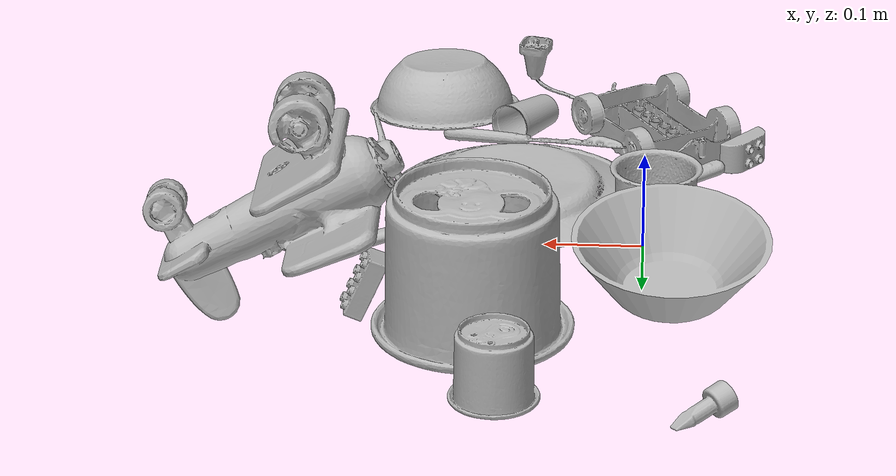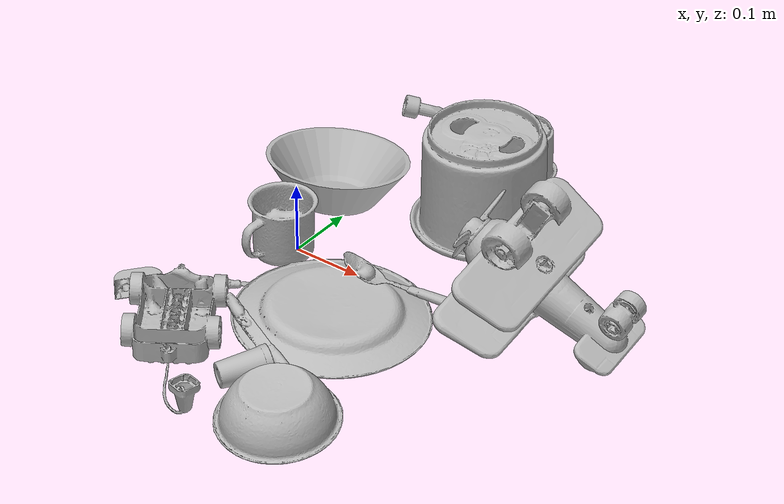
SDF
<sdf version="1.4">
  <world name="default">
    <light name="light1" type="point">
      <pose>0 0 1 0 0 0</pose>
      <diffuse>3 3 3 1</diffuse>
      <specular>3 3 3 1</specular>
    </light>
    <light name="light2" type="point">
      <pose>0 0.5 2 0 0 0</pose>
      <diffuse>1 1 1 1</diffuse>
      <specular>1 1 1 1</specular>
    </light>
    <light name="light3" type="point">
      <pose>0 0.5 2 0 0 0</pose>
      <diffuse>3 3 3 1</diffuse>
      <specular>3 3 3 1</specular>
    </light>
    <scene>
      <ambient>0.7 0.7 0.7</ambient>
    </scene>
    <model name="plate1">
      <link name="link_plate1">
        <collision name="default">
          <geometry>
            <mesh>
              <uri>model://plate/collision_meshes/collision.obj</uri>
              <scale>1.0 1.0 1.0</scale>
            </mesh>
          </geometry>
          <surface>
            <friction>
              <ode>
                <mu>0.5</mu>
                <mu2>0.5</mu2>
              </ode>
            </friction>
          <contact>
        <ode>
            <max_vel>0</max_vel>
            <min_depth>0.0001</min_depth>
            <kp>1e8</kp>
        </ode>
    </contact></surface>
        </collision>
        <visual name="default">
          <geometry>
            <mesh>
              <uri>model://plate/visual_meshes/visual.dae</uri>
              <scale>1.0 1.0 1.0</scale>
            </mesh>
          </geometry>
        </visual>
        <inertial>
          <mass>0.22833794355392456</mass>
          <pose>-0.000604461005423218 0.00027825840516015887 -0.0010561991948634386 0.0022188074693480237 -0.003225470002654536 0.4526028307495764</pose>
          <inertia>
            <ixx>0.0010681693</ixx>
            <iyy>0.0010579526</iyy>
            <izz>0.0020891798</izz>
            <ixy>0</ixy>
            <ixz>0</ixz>
            <iyz>0</iyz>
          </inertia>
        </inertial>
      </link>
      <pose>0.13571788370609283 -0.10153408348560333 0.015735430642962456 3.112438115527315 0.001344075684000822 -1.1689753707384587</pose>
    </model>
    <model name="cup1">
      <link name="link_cup1">
        <collision name="default">
          <geometry>
            <mesh>
              <uri>model://i_cups/collision_meshes/collision.obj</uri>
              <scale>2.0 2.0 2.0</scale>
            </mesh>
          </geometry>
          <surface>
            <friction>
              <ode>
                <mu>0.5</mu>
                <mu2>0.5</mu2>
              </ode>
            </friction>
          <contact>
        <ode>
            <max_vel>0</max_vel>
            <min_depth>0.0001</min_depth>
            <kp>1e8</kp>
        </ode>
    </contact></surface>
        </collision>
        <visual name="default">
          <geometry>
            <mesh>
              <uri>model://i_cups/visual_meshes/visual.dae</uri>
              <scale>2.0 2.0 2.0</scale>
            </mesh>
          </geometry>
        </visual>
        <inertial>
          <mass>0.4681873917579651</mass>
          <pose>0.00022480281768366694 0.00033594679553061724 -0.001715805265121162 -0.028982833374769763 -0.039873302367341296 -0.3459182567321849</pose>
          <inertia>
            <ixx>0.0025928493</ixx>
            <iyy>0.0026156942</iyy>
            <izz>0.0028979292</izz>
            <ixy>0</ixy>
            <ixz>0</ixz>
            <iyz>0</iyz>
          </inertia>
        </inertial>
      </link>
      <pose>0.16196709871292114 0.19838927686214447 0.07586616277694702 -3.14158569859669 6.23998643555744e-06 -2.8481236904254086</pose>
    </model>
    <model name="silverware1">
      <link name="link_silverware1">
        <collision name="default">
          <geometry>
            <mesh>
              <uri>model://fork/collision_meshes/collision.obj</uri>
              <scale>1.0 1.0 1.0</scale>
            </mesh>
          </geometry>
          <surface>
            <friction>
              <ode>
                <mu>0.5</mu>
                <mu2>0.5</mu2>
              </ode>
            </friction>
          <contact>
        <ode>
            <max_vel>0</max_vel>
            <min_depth>0.0001</min_depth>
            <kp>1e8</kp>
        </ode>
    </contact></surface>
        </collision>
        <visual name="default">
          <geometry>
            <mesh>
              <uri>model://fork/visual_meshes/visual.dae</uri>
              <scale>1.0 1.0 1.0</scale>
            </mesh>
          </geometry>
        </visual>
        <inertial>
          <mass>0.027571624144911766</mass>
          <pose>-0.02957003377377987 0.00046588233090005815 0.00032188609475269914 -0.013550958023284024 -0.010977835737993834 0.014453901364285019</pose>
          <inertia>
            <ixx>9.665413e-07</ixx>
            <iyy>7.198156e-05</iyy>
            <izz>7.24139e-05</izz>
            <ixy>0</ixy>
            <ixz>0</ixz>
            <iyz>0</iyz>
          </inertia>
        </inertial>
      </link>
      <pose>-0.006992418318986893 -0.11624737828969955 0.0052323611453175545 0.019992805177353506 0.05111335638700293 0.7209513524843545</pose>
    </model>
    <model name="silverware2">
      <link name="link_silverware2">
        <collision name="default">
          <geometry>
            <mesh>
              <uri>model://spoon/collision_meshes/collision.obj</uri>
              <scale>1.0 1.0 1.0</scale>
            </mesh>
          </geometry>
          <surface>
            <friction>
              <ode>
                <mu>0.5</mu>
                <mu2>0.5</mu2>
              </ode>
            </friction>
          <contact>
        <ode>
            <max_vel>0</max_vel>
            <min_depth>0.0001</min_depth>
            <kp>1e8</kp>
        </ode>
    </contact></surface>
        </collision>
        <visual name="default">
          <geometry>
            <mesh>
              <uri>model://spoon/visual_meshes/visual.dae</uri>
              <scale>1.0 1.0 1.0</scale>
            </mesh>
          </geometry>
        </visual>
        <inertial>
          <mass>0.026229728013277054</mass>
          <pose>-0.005526318680495024 -0.001603417913429439 -0.0007271656068041921 0.03521671072465583 -0.039065837568760656 0.006150610113583586</pose>
          <inertia>
            <ixx>1.4589405e-06</ixx>
            <iyy>9.980327e-05</iyy>
            <izz>0.00010052276</izz>
            <ixy>0</ixy>
            <ixz>0</ixz>
            <iyz>0</iyz>
          </inertia>
        </inertial>
      </link>
      <pose>0.19509153068065643 -0.012304417788982391 0.02572697214782238 0.06872209931399753 -0.17553776977184374 -2.837325525251347</pose>
    </model>
    <model name="silverware3">
      <link name="link_silverware3">
        <collision name="default">
          <geometry>
            <mesh>
              <uri>model://knife/collision_meshes/collision.obj</uri>
              <scale>1.0 1.0 1.0</scale>
            </mesh>
          </geometry>
          <surface>
            <friction>
              <ode>
                <mu>0.5</mu>
                <mu2>0.5</mu2>
              </ode>
            </friction>
          <contact>
        <ode>
            <max_vel>0</max_vel>
            <min_depth>0.0001</min_depth>
            <kp>1e8</kp>
        </ode>
    </contact></surface>
        </collision>
        <visual name="default">
          <geometry>
            <mesh>
              <uri>model://knife/visual_meshes/visual.dae</uri>
              <scale>1.0 1.0 1.0</scale>
            </mesh>
          </geometry>
        </visual>
        <inertial>
          <mass>0.02346421591937542</mass>
          <pose>-0.02378525584936142 0.0015275125624611974 5.062017953605391e-05 0.07305400797241687 0.017248417900584085 -0.007409820985288758</pose>
          <inertia>
            <ixx>6.6600956e-07</ixx>
            <iyy>9.0145724e-05</iyy>
            <izz>9.036023e-05</izz>
            <ixy>0</ixy>
            <ixz>0</ixz>
            <iyz>0</iyz>
          </inertia>
        </inertial>
      </link>
      <pose>0.1163187175989151 -0.21615050733089447 0.019460950046777725 2.842245286900295 -0.117399073446401 2.727545060308452</pose>
    </model>
    <model name="cup3">
      <link name="link_cup3">
        <collision name="default">
          <geometry>
            <mesh>
              <uri>model://g_cups/collision_meshes/collision.obj</uri>
              <scale>1.0 1.0 1.0</scale>
            </mesh>
          </geometry>
          <surface>
            <friction>
              <ode>
                <mu>0.5</mu>
                <mu2>0.5</mu2>
              </ode>
            </friction>
          <contact>
        <ode>
            <max_vel>0</max_vel>
            <min_depth>0.0001</min_depth>
            <kp>1e8</kp>
        </ode>
    </contact></surface>
        </collision>
        <visual name="default">
          <geometry>
            <mesh>
              <uri>model://g_cups/visual_meshes/visual.dae</uri>
              <scale>1.0 1.0 1.0</scale>
            </mesh>
          </geometry>
        </visual>
        <inertial>
          <mass>0.061065707355737686</mass>
          <pose>-0.0007946277037262917 -4.2064726585522294e-05 -0.002132938476279378 -0.21381528234109023 -0.31410608856426947 0.31118675593786127</pose>
          <inertia>
            <ixx>7.1277376e-05</ixx>
            <iyy>7.10349e-05</iyy>
            <izz>7.383109e-05</izz>
            <ixy>0</ixy>
            <ixz>0</ixz>
            <iyz>0</iyz>
          </inertia>
        </inertial>
      </link>
      <pose>0.13503611087799072 0.3384011685848236 0.03711601346731186 3.1415921579719823 -3.2175784494540524e-07 -0.6677919298046442</pose>
    </model>
    <model name="cup4">
      <link name="link_cup4">
        <collision name="default">
          <geometry>
            <mesh>
              <uri>model://mug/collision_meshes/collision.obj</uri>
              <scale>1.0 1.0 1.0</scale>
            </mesh>
          </geometry>
          <surface>
            <friction>
              <ode>
                <mu>0.5</mu>
                <mu2>0.5</mu2>
              </ode>
            </friction>
          <contact>
        <ode>
            <max_vel>0</max_vel>
            <min_depth>0.0001</min_depth>
            <kp>1e8</kp>
        </ode>
    </contact></surface>
        </collision>
        <visual name="default">
          <geometry>
            <mesh>
              <uri>model://mug/visual_meshes/visual.dae</uri>
              <scale>1.0 1.0 1.0</scale>
            </mesh>
          </geometry>
        </visual>
        <inertial>
          <mass>0.23807048797607422</mass>
          <pose>0.009571674279868603 0.0008143257582560182 -0.010947330854833126 -0.1298314387661624 0.08737745525079747 0.05507303490292968</pose>
          <inertia>
            <ixx>0.00023648023</ixx>
            <iyy>0.0002641344</iyy>
            <izz>0.00030547503</izz>
            <ixy>0</ixy>
            <ixz>0</ixz>
            <iyz>0</iyz>
          </inertia>
        </inertial>
      </link>
      <pose>-0.013123761862516403 -0.026172563433647156 0.04094948247075081 1.775729628819799e-05 7.600458544088185e-06 1.3941269860411882</pose>
    </model>
    <model name="cup5">
      <link name="link_cup5">
        <collision name="default">
          <geometry>
            <mesh>
              <uri>model://cup_small/collision_meshes/collision.obj</uri>
              <scale>1.0 1.0 1.0</scale>
            </mesh>
          </geometry>
          <surface>
            <friction>
              <ode>
                <mu>0.5</mu>
                <mu2>0.5</mu2>
              </ode>
            </friction>
          <contact>
        <ode>
            <max_vel>0</max_vel>
            <min_depth>0.0001</min_depth>
            <kp>1e8</kp>
        </ode>
    </contact></surface>
        </collision>
        <visual name="default">
          <geometry>
            <mesh>
              <uri>model://cup_small/visual_meshes/visual.dae</uri>
              <scale>1.0 1.0 1.0</scale>
            </mesh>
          </geometry>
        </visual>
        <inertial>
          <mass>0.034257128834724426</mass>
          <pose>0.00010482469951966777 -0.00033778377110138535 -0.01074282731860876 -0.011493012610900502 -0.015280351102743797 -0.5058271067899499</pose>
          <inertia>
            <ixx>2.0170073e-05</ixx>
            <iyy>2.0274121e-05</iyy>
            <izz>9.106847e-06</izz>
            <ixy>0</ixy>
            <ixz>0</ixz>
            <iyz>0</iyz>
          </inertia>
        </inertial>
      </link>
      <pose>0.1263997107744217 -0.27128440141677856 0.020261403173208237 1.433551507572142 -1.0132933258712784 2.6971735676701565</pose>
    </model>
    <model name="bowl1">
      <link name="link_bowl1">
        <collision name="default">
          <geometry>
            <mesh>
              <uri>model://bowl/collision_meshes/collision.obj</uri>
              <scale>1.0 1.0 1.0</scale>
            </mesh>
          </geometry>
          <surface>
            <friction>
              <ode>
                <mu>0.5</mu>
                <mu2>0.5</mu2>
              </ode>
            </friction>
          <contact>
        <ode>
            <max_vel>0</max_vel>
            <min_depth>0.0001</min_depth>
            <kp>1e8</kp>
        </ode>
    </contact></surface>
        </collision>
        <visual name="default">
          <geometry>
            <mesh>
              <uri>model://bowl/visual_meshes/visual.dae</uri>
              <scale>1.0 1.0 1.0</scale>
            </mesh>
          </geometry>
        </visual>
        <inertial>
          <mass>0.06465846300125122</mass>
          <pose>0.0002044529392151162 -0.0010302059818059206 -0.0008042643894441426 -0.015764115524798613 0.014546769889283702 0.7140385686011532</pose>
          <inertia>
            <ixx>0.00014852564</ixx>
            <iyy>0.000145207</iyy>
            <izz>0.00024987117</izz>
            <ixy>0</ixy>
            <ixz>0</ixz>
            <iyz>0</iyz>
          </inertia>
        </inertial>
      </link>
      <pose>0.21801745891571045 -0.32028546929359436 0.035304825752973557 3.043723498708216 -0.027370822472548136 -3.091265711091846</pose>
    </model>
    <model name="bowl2">
      <link name="link_bowl2">
        <collision name="default">
          <geometry>
            <mesh>
              <uri>model://bowl_a/collision_meshes/collision.obj</uri>
              <scale>1.0 1.0 1.0</scale>
            </mesh>
          </geometry>
          <surface>
            <friction>
              <ode>
                <mu>0.5</mu>
                <mu2>0.5</mu2>
              </ode>
            </friction>
          <contact>
        <ode>
            <max_vel>0</max_vel>
            <min_depth>0.0001</min_depth>
            <kp>1e8</kp>
        </ode>
    </contact></surface>
        </collision>
        <visual name="default">
          <geometry>
            <mesh>
              <uri>model://bowl_a/visual_meshes/visual.dae</uri>
              <scale>1.0 1.0 1.0</scale>
            </mesh>
          </geometry>
        </visual>
        <inertial>
          <mass>0.4949932396411896</mass>
          <pose>0.00027867621975019574 4.730939326691441e-05 -0.0013765293406322598 -0.0009805412802391578 -0.001093824733375575 -0.19123603072484788</pose>
          <inertia>
            <ixx>0.0014092687</ixx>
            <iyy>0.0014179207</iyy>
            <izz>0.0025064375</izz>
            <ixy>0</ixy>
            <ixz>0</ixz>
            <iyz>0</iyz>
          </inertia>
        </inertial>
      </link>
      <pose>-0.02788478694856167 0.12247233837842941 0.03902503103017807 -0.12828269146072818 -0.09868930145706165 -0.5716028901922021</pose>
    </model>
    <model name="toy1">
      <link name="link_toy1">
        <collision name="default">
          <geometry>
            <mesh>
              <uri>model://a_toy_airplane/collision_meshes/collision.obj</uri>
              <scale>1.0 1.0 1.0</scale>
            </mesh>
          </geometry>
          <surface>
            <friction>
              <ode>
                <mu>0.5</mu>
                <mu2>0.5</mu2>
              </ode>
            </friction>
          <contact>
        <ode>
            <max_vel>0</max_vel>
            <min_depth>0.0001</min_depth>
            <kp>1e8</kp>
        </ode>
    </contact></surface>
        </collision>
        <visual name="default">
          <geometry>
            <mesh>
              <uri>model://a_toy_airplane/visual_meshes/visual.dae</uri>
              <scale>1.0 1.0 1.0</scale>
            </mesh>
          </geometry>
        </visual>
        <inertial>
          <mass>1.5726872682571411</mass>
          <pose>0.025165090337395668 -0.003707318101078272 -0.0011962441494688392 -0.012016975653996446 -0.14663502644886817 0.00414906395026872</pose>
          <inertia>
            <ixx>0.0057111816</ixx>
            <iyy>0.008322349</iyy>
            <izz>0.009744448</izz>
            <ixy>0</ixy>
            <ixz>0</ixz>
            <iyz>0</iyz>
          </inertia>
        </inertial>
      </link>
      <pose>0.3620453178882599 0.058328237384557724 0.05869068205356598 2.93040731837157 -0.647732679486564 -2.977064828759501</pose>
    </model>
    <model name="toy2">
      <link name="link_toy2">
        <collision name="default">
          <geometry>
            <mesh>
              <uri>model://g_lego_duplo/collision_meshes/collision.obj</uri>
              <scale>1.0 1.0 1.0</scale>
            </mesh>
          </geometry>
          <surface>
            <friction>
              <ode>
                <mu>0.5</mu>
                <mu2>0.5</mu2>
              </ode>
            </friction>
          <contact>
        <ode>
            <max_vel>0</max_vel>
            <min_depth>0.0001</min_depth>
            <kp>1e8</kp>
        </ode>
    </contact></surface>
        </collision>
        <visual name="default">
          <geometry>
            <mesh>
              <uri>model://g_lego_duplo/visual_meshes/visual.dae</uri>
              <scale>1.0 1.0 1.0</scale>
            </mesh>
          </geometry>
        </visual>
        <inertial>
          <mass>0.27239978313446045</mass>
          <pose>-0.05004768446087837 0.0017554647056385875 0.003880675882101059 0.010962999716487856 0.03810827607734427 -0.09653019061870628</pose>
          <inertia>
            <ixx>0.00039471043</ixx>
            <iyy>0.0011933373</iyy>
            <izz>0.0014929089</izz>
            <ixy>0</ixy>
            <ixz>0</ixz>
            <iyz>0</iyz>
          </inertia>
        </inertial>
      </link>
      <pose>0.026757001876831055 -0.2883996367454529 0.027628999203443527 -3.1415916293608115 -0.030279669014065626 -0.9761596327561072</pose>
    </model>
    <model name="toy3">
      <link name="link_toy3">
        <collision name="default">
          <geometry>
            <mesh>
              <uri>model://e_toy_airplane/collision_meshes/collision.obj</uri>
              <scale>1.0 1.0 1.0</scale>
            </mesh>
          </geometry>
          <surface>
            <friction>
              <ode>
                <mu>0.5</mu>
                <mu2>0.5</mu2>
              </ode>
            </friction>
          <contact>
        <ode>
            <max_vel>0</max_vel>
            <min_depth>0.0001</min_depth>
            <kp>1e8</kp>
        </ode>
    </contact></surface>
        </collision>
        <visual name="default">
          <geometry>
            <mesh>
              <uri>model://e_toy_airplane/visual_meshes/visual.dae</uri>
              <scale>1.0 1.0 1.0</scale>
            </mesh>
          </geometry>
        </visual>
        <inertial>
          <mass>0.02767481654882431</mass>
          <pose>0.00011740472837118432 -2.2482989152194932e-05 -0.011187202297151089 0.005518508312800945 0.009228282632666047 0.1504154330375105</pose>
          <inertia>
            <ixx>8.446671e-06</ixx>
            <iyy>8.360266e-06</iyy>
            <izz>2.5385568e-06</izz>
            <ixy>0</ixy>
            <ixz>0</ixz>
            <iyz>0</iyz>
          </inertia>
        </inertial>
      </link>
      <pose>-0.057513535022735596 0.37324222922325134 0.010869866237044334 3.003553962271448 1.3103060708404393 -2.6266314301071563</pose>
    </model>
    <model name="toy4">
      <link name="link_toy4">
        <collision name="default">
          <geometry>
            <mesh>
              <uri>model://c_lego_duplo/collision_meshes/collision.obj</uri>
              <scale>1.0 1.0 1.0</scale>
            </mesh>
          </geometry>
          <surface>
            <friction>
              <ode>
                <mu>0.5</mu>
                <mu2>0.5</mu2>
              </ode>
            </friction>
          <contact>
        <ode>
            <max_vel>0</max_vel>
            <min_depth>0.0001</min_depth>
            <kp>1e8</kp>
        </ode>
    </contact></surface>
        </collision>
        <visual name="default">
          <geometry>
            <mesh>
              <uri>model://c_lego_duplo/visual_meshes/visual.dae</uri>
              <scale>1.0 1.0 1.0</scale>
            </mesh>
          </geometry>
        </visual>
        <inertial>
          <mass>0.027596205472946167</mass>
          <pose>0.0003164597146678716 0.00019464619981590658 0.0010453155264258385 -0.011520800817134696 0.005900104067849837 0.03110033537421094</pose>
          <inertia>
            <ixx>1.0619538e-05</ixx>
            <iyy>3.3922634e-06</iyy>
            <izz>1.2410018e-05</izz>
            <ixy>0</ixy>
            <ixz>0</ixz>
            <iyz>0</iyz>
          </inertia>
        </inertial>
      </link>
      <pose>0.26983752846717834 0.16821223497390747 0.03383144736289978 1.148611216195452 0.03218650982959181 1.6697933502665856</pose>
    </model>
    <model name="toy5">
      <link name="link_toy5">
        <collision name="default">
          <geometry>
            <mesh>
              <uri>model://a_lego_duplo/collision_meshes/collision.obj</uri>
              <scale>1.0 1.0 1.0</scale>
            </mesh>
          </geometry>
          <surface>
            <friction>
              <ode>
                <mu>0.5</mu>
                <mu2>0.5</mu2>
              </ode>
            </friction>
          <contact>
        <ode>
            <max_vel>0</max_vel>
            <min_depth>0.0001</min_depth>
            <kp>1e8</kp>
        </ode>
    </contact></surface>
        </collision>
        <visual name="default">
          <geometry>
            <mesh>
              <uri>model://a_lego_duplo/visual_meshes/visual.dae</uri>
              <scale>1.0 1.0 1.0</scale>
            </mesh>
          </geometry>
        </visual>
        <inertial>
          <mass>0.011767913587391376</mass>
          <pose>-0.00011337622709106654 0.00018517576972953975 0.0003692608152050525 -0.0141170192796563 -0.00012565406274383194 6.140908251533293e-05</pose>
          <inertia>
            <ixx>1.5087408e-06</ixx>
            <iyy>3.3799095e-06</iyy>
            <izz>4.186769e-06</izz>
            <ixy>0</ixy>
            <ixz>0</ixz>
            <iyz>0</iyz>
          </inertia>
        </inertial>
      </link>
      <pose>-0.1069563552737236 -0.20247355103492737 0.016246913000941277 -1.5708150549033348 -5.541066970657653e-06 0.8873090011475038</pose>
    </model>
  <physics type="ode">
      <max_contacts>50</max_contacts>
      <ode>
        <solver>
          <type>quick</type>
          <iters>75</iters>
        </solver>
        <constraints>
          <contact_max_correcting_vel>0</contact_max_correcting_vel>
          <contact_surface_layer>0</contact_surface_layer>
        </constraints>
      </ode>
    </physics></world>
</sdf>
